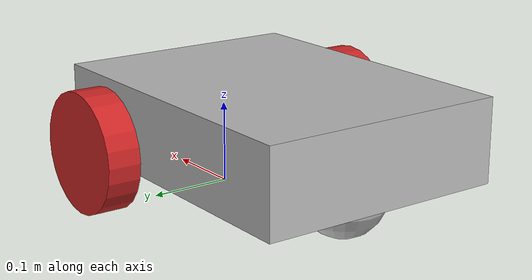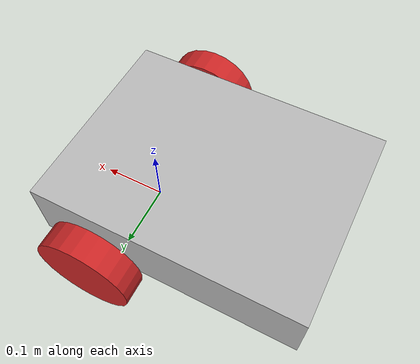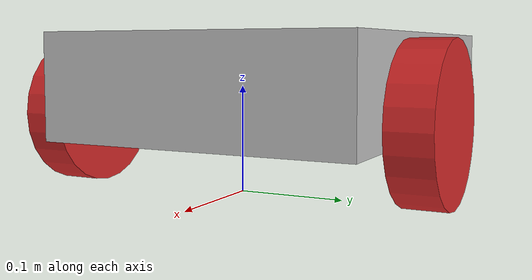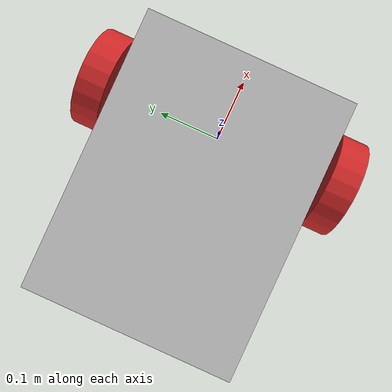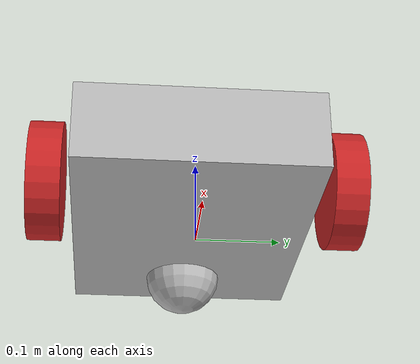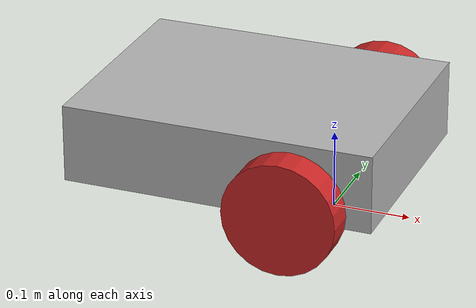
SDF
<?xml version='1.0'?>
<sdf version="1.4">
  <model name="wheel_robot_simple">
    <link name="body_link">
      <pose>-0.10 0 0.1 0 0 0</pose>
      <inertial>
        <mass>5.0</mass>
        <inertia>
          <ixx>0.042</ixx>
          <ixy>0.0</ixy>
          <ixz>0.0</ixz>
          <iyy>0.071</iyy>
          <iyz>0.0</iyz>
          <izz>0.104</izz>
        </inertia>
      </inertial>
      <collision name="collision">
        <geometry>
          <box>
            <size>0.4 0.3 0.1</size>
          </box>
        </geometry>
      </collision>
      <visual name="visual">
        <geometry>
          <box>
            <size>0.4 0.3 0.1</size>
          </box>
        </geometry>
      </visual>
    </link>

    <joint name='back_ball_joint' type='fixed'>
      <parent>body_link</parent>
      <child>back_ball_link</child>
      <pose>0 0 0 0 0 0</pose>
      <axis>
        <use_parent_model_frame>true</use_parent_model_frame>
        <xyz>-0.23 0 0.05</xyz>
      </axis>
    </joint>
    <link name="back_ball_link">
      <pose>-0.23 0 0.05 0 0 0</pose>
      <inertial>
        <mass>0.1</mass>
        <inertia>
          <ixx>0.0001</ixx>
          <ixy>0.0</ixy>
          <ixz>0.0</ixz>
          <iyy>0.0001</iyy>
          <iyz>0.0</iyz>
          <izz>0.0001</izz>
        </inertia>
      </inertial>
      <collision name="collision">
        <geometry>
          <sphere>
            <radius>0.05</radius>
          </sphere>
        </geometry>
        <surface>
          <friction>
            <ode>
              <mu>0.1</mu>
              <mu2>0.1</mu2>
            </ode>
          </friction>
          <contact>
            <ode>
              <kp>200000</kp>
              <kd>1</kd>
            </ode>
          </contact>
        </surface>
      </collision>
      <visual name="visual">
        <geometry>
          <sphere>
            <radius>0.05</radius>
          </sphere>
        </geometry>
      </visual>
    </link>

    <joint name='left_wheel_joint' type='revolute'>
      <parent>body_link</parent>
      <child>left_wheel_link</child>
      <pose>0 0 0 0 0 0</pose>
      <axis>
        <xyz>0 1 0</xyz>
      </axis>
    </joint>
    <link name="left_wheel_link">
      <pose>0 0.18 0.072 1.5707 0 0</pose>
      <inertial>
        <mass>0.2</mass>
        <inertia>
          <ixx>0.00026</ixx>
          <ixy>0.0</ixy>
          <ixz>0.0</ixz>
          <iyy>0.00026</iyy>
          <iyz>0.0</iyz>
          <izz>0.00052</izz>
        </inertia>
      </inertial>
      <collision name="collision">
        <geometry>
          <cylinder>
            <radius>0.072</radius>
            <length>0.04</length>
          </cylinder>
        </geometry>
        <surface>
          <friction>
            <ode>
              <mu>0.5</mu>
              <mu2>0.5</mu2>
            </ode>
          </friction>
          <contact>
            <ode>
              <kp>100000</kp>
              <kd>1</kd>
            </ode>
          </contact>
        </surface>
      </collision>
      <visual name="visual">
        <geometry>
          <cylinder>
            <radius>0.072</radius>
            <length>0.04</length>
          </cylinder>
        </geometry>
        <material>
          <script>
            <uri>file://media/materials/scripts/gazebo.material</uri>
            <name>Gazebo/Red</name>
          </script>
        </material>
      </visual>
    </link>

    <joint name='right_wheel_joint' type='revolute'>
      <parent>body_link</parent>
      <child>right_wheel_link</child>
      <pose>0 0 0 0 0 0</pose>
      <axis>
        <xyz>0 1 0</xyz>
      </axis>
    </joint>
    <link name="right_wheel_link">
      <pose>0 -0.18 0.072 1.5707 0 0</pose>
      <inertial>
        <mass>0.2</mass>
        <inertia>
          <ixx>0.00026</ixx>
          <ixy>0.0</ixy>
          <ixz>0.0</ixz>
          <iyy>0.00026</iyy>
          <iyz>0.0</iyz>
          <izz>0.00052</izz>
        </inertia>
      </inertial>
      <collision name="collision">
        <geometry>
          <cylinder>
            <radius>0.072</radius>
            <length>0.04</length>
          </cylinder>
        </geometry>
        <surface>
          <friction>
            <ode>
              <mu>0.5</mu>
              <mu2>0.5</mu2>
            </ode>
          </friction>
          <contact>
            <ode>
              <kp>100000</kp>
              <kd>1</kd>
            </ode>
          </contact>
        </surface>
      </collision>
      <visual name="visual">
        <geometry>
          <cylinder>
            <radius>0.072</radius>
            <length>0.04</length>
          </cylinder>
        </geometry>
        <material>
          <script>
            <uri>file://media/materials/scripts/gazebo.material</uri>
            <name>Gazebo/Red</name>
          </script>
        </material>
      </visual>
    </link>

    <plugin name="differential_drive_controller" filename="libgazebo_ros_diff_drive.so">
      <robotNamespace>/</robotNamespace>
      <commandTopic>/cmd_vel</commandTopic>
      <odometryTopic>/odom</odometryTopic>
      <odometryFrame>odom</odometryFrame>
      <robotBaseFrame>base_link</robotBaseFrame>
      <publishWheelTF>false</publishWheelTF>
      <publishOdomTF>true</publishOdomTF>
      <publishWheelJointState>false</publishWheelJointState>
      <wheelSeparation>0.36</wheelSeparation>
      <wheelDiameter>0.144</wheelDiameter>
      <wheelAcceleration>30</wheelAcceleration>
      <wheelTorque>5.0</wheelTorque>
      <updateRate>40</updateRate>
      <odometrySource>encoder</odometrySource>
      <leftJoint>left_wheel_joint</leftJoint>
      <rightJoint>right_wheel_joint</rightJoint>
      <publishTf>true</publishTf>
    </plugin>
  </model>
</sdf>
